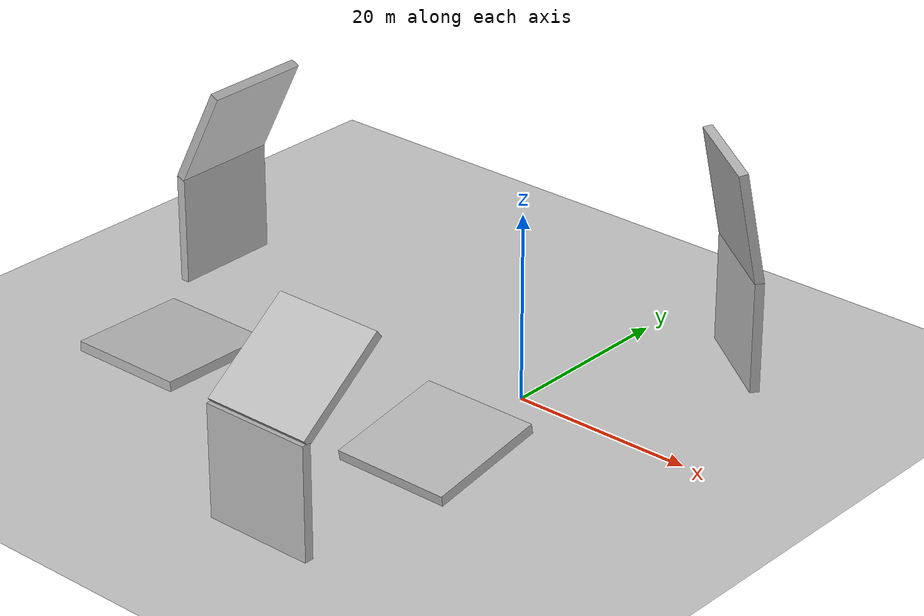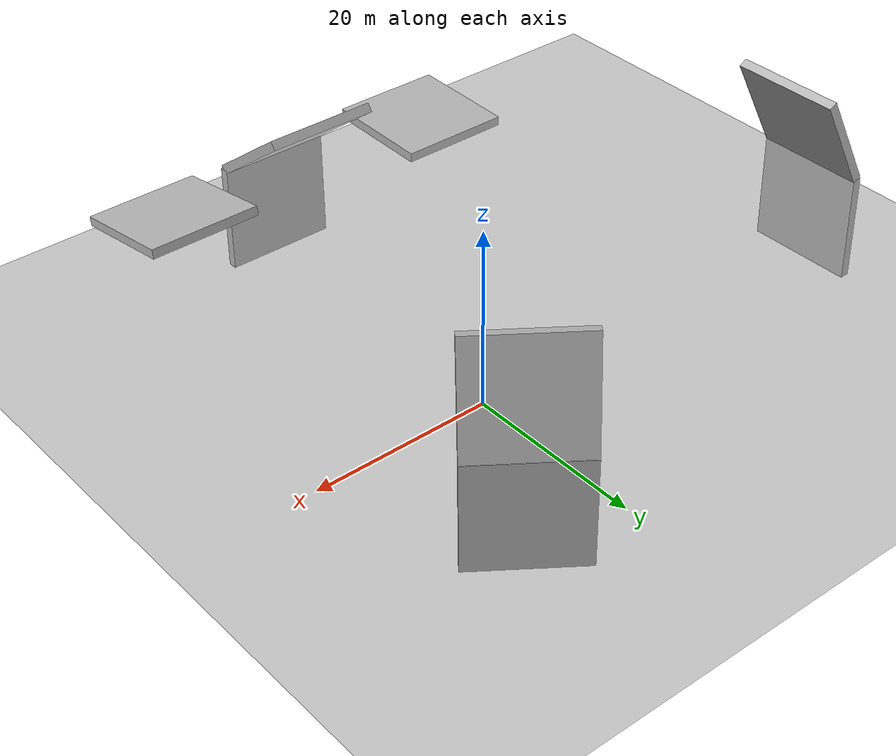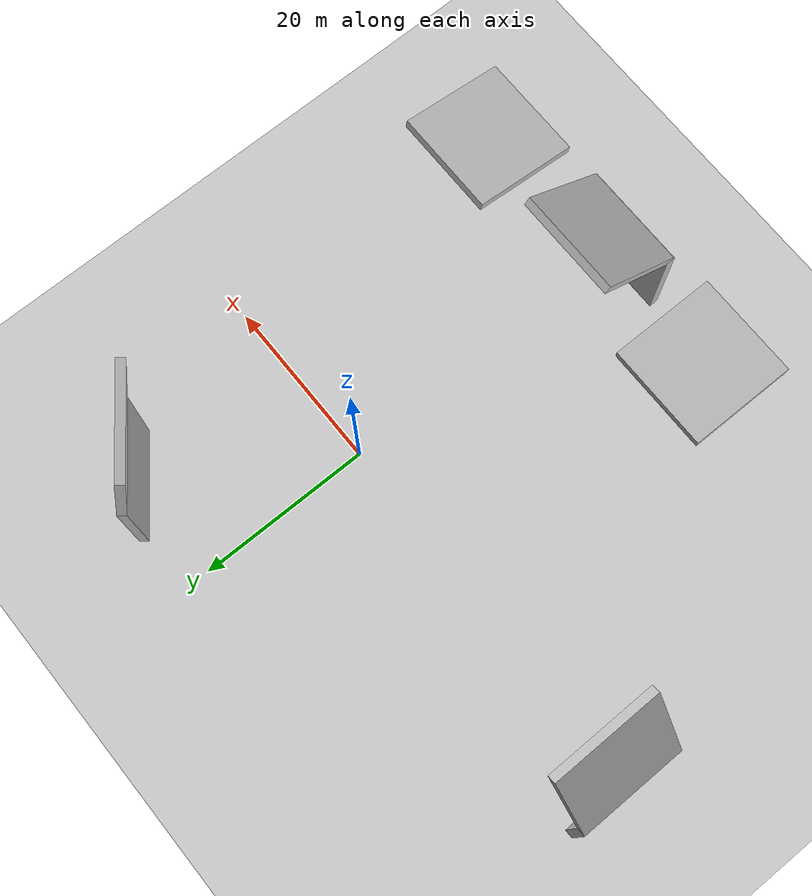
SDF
<?xml version="1.0" ?>
<sdf version='1.7'>
  <world name='default'>
    <light name='sun' type='directional'>
      <cast_shadows>1</cast_shadows>
      <pose>0 0 10 0 -0 0</pose>
      <diffuse>0.8 0.8 0.8 1</diffuse>
      <specular>0.2 0.2 0.2 1</specular>
      <attenuation>
        <range>1000</range>
        <constant>0.9</constant>
        <linear>0.01</linear>
        <quadratic>0.001</quadratic>
      </attenuation>
      <direction>-0.5 0.1 -0.9</direction>
      <spot>
        <inner_angle>0</inner_angle>
        <outer_angle>0</outer_angle>
        <falloff>0</falloff>
      </spot>
    </light>
    <model name='ground_plane'>
      <static>1</static>
      <link name='link'>
        <collision name='collision'>
          <geometry>
            <plane>
              <normal>0 0 1</normal>
              <size>100 100</size>
            </plane>
          </geometry>
          <surface>
            <contact>
              <collide_bitmask>65535</collide_bitmask>
              <ode/>
            </contact>
            <friction>
              <ode>
                <mu>100</mu>
                <mu2>50</mu2>
              </ode>
              <torsional>
                <ode/>
              </torsional>
            </friction>
            <bounce/>
          </surface>
          <max_contacts>10</max_contacts>
        </collision>
        <visual name='visual'>
          <cast_shadows>0</cast_shadows>
          <geometry>
            <plane>
              <normal>0 0 1</normal>
              <size>100 100</size>
            </plane>
          </geometry>
          <material>
            <script>
              <uri>file://media/materials/scripts/gazebo.material</uri>
              <name>Gazebo/Grey</name>
            </script>
          </material>
        </visual>
        <self_collide>0</self_collide>
        <enable_wind>0</enable_wind>
        <kinematic>0</kinematic>
      </link>
    </model>
    <gravity>0 0 -9.8</gravity>
    <magnetic_field>6e-06 2.3e-05 -4.2e-05</magnetic_field>
    <atmosphere type='adiabatic'/>
    <physics type='ode'>
      <max_step_size>0.001</max_step_size>
      <real_time_factor>1</real_time_factor>
      <real_time_update_rate>1000</real_time_update_rate>
    </physics>
    <scene>
      <ambient>0.4 0.4 0.4 1</ambient>
      <background>0.7 0.7 0.7 1</background>
      <shadows>0</shadows>
    </scene>
    <wind/>
    <spherical_coordinates>
      <surface_model>EARTH_WGS84</surface_model>
      <latitude_deg>0</latitude_deg>
      <longitude_deg>0</longitude_deg>
      <elevation>0</elevation>
      <heading_deg>0</heading_deg>
    </spherical_coordinates>
    <include>
      <name>wall 1</name>
      <uri>model://interaction_wall</uri>
      <pose>-0.813837 -35.4933 0 0 -0 0</pose>
    </include>

    <include>
      <name>wall 2</name>
      <uri>model://interaction_wall</uri>
      <pose>-43.4185 2.0949 -0 0 -0 1.58298</pose>
    </include>

    <include>
      <name>wall 3</name>
      <uri>model://interaction_wall</uri>
      <pose>-43.4185 2.0949 11.9408 0.471063 -0 1.58298</pose>
    </include>

    <include>
      <name>wall 4</name>
      <uri>model://interaction_wall</uri>
      <pose>11.6372 19.6954 0 0 -0 2.51001</pose>
    </include>

    <include>
      <name>wall 5</name>
      <uri>model://interaction_wall</uri>
      <pose>11.6372 19.6954 11.984 -0.180502 -0 2.51001</pose>
    </include>

    <include>
      <name>wall 6</name>
      <uri>model://interaction_wall</uri>
      <pose>-0.813837 -35.4933 12.0152 -0.927793 0 0</pose>
    </include>

    <include>
      <name>wall 7</name>
      <uri>model://interaction_wall</uri>
      <pose>-16.8969 -36.5274 12.3819 -1.5817 0 0</pose>
    </include>

    <include>
      <name>wall 8</name>
      <uri>model://interaction_wall</uri>
      <pose>15.0094 -35.3549 12.3848 -1.39584 0 0</pose>
    </include>

    <gui>
      <camera name="user_camera">
        <track_visual>
          <static>true</static>
          <use_model_frame>true</use_model_frame>
          <xyz>-3.5 -2 3</xyz>
          <inherit_yaw>true</inherit_yaw>
        </track_visual>
    </camera>
    </gui>
  </world>
</sdf>

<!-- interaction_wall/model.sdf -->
<sdf version="1.5">
<model name='mywall'>
      <static>1</static>
      <link name='link'>
        <inertial>
          <mass>10000</mass>
          <inertia>
            <ixx>583.556</ixx>
            <ixy>0</ixy>
            <ixz>0</ixz>
            <iyy>1678.8</iyy>
            <iyz>0</iyz>
            <izz>1111.54</izz>
          </inertia>
          <pose>0 0 0 0 -0 0</pose>
        </inertial>
        <self_collide>0</self_collide>
        <enable_wind>0</enable_wind>
        <pose>0 0 6 -0 -0 -0</pose>
        <visual name='visual'>
          <geometry>
            <box>
              <size>12 1 12</size>
            </box>
          </geometry>
          <material>
            <script>
              <name>Concrete/Diffuse</name>
              <uri>model://interaction_wall/materials/concretewall.material</uri>
            </script>
          </material>
          <pose>0 0 0 0 -0 0</pose>
          <transparency>0</transparency>
          <cast_shadows>1</cast_shadows>
        </visual>
        <collision name='collision'>
          <laser_retro>0</laser_retro>
          <max_contacts>10</max_contacts>
          <pose>0 0 0 0 -0 0</pose>
          <geometry>
            <box>
              <size>12 1 12</size>
            </box>
          </geometry>
          <surface>
            <friction>
              <ode/>
              <torsional>
                <ode/>
              </torsional>
            </friction>
            <contact>
              <ode/>
            </contact>
            <bounce/>
          </surface>
          <mu1>1</mu1>
          <mu2>1</mu2>
        </collision>
        <kinematic>0</kinematic>
      </link>
      <allow_auto_disable>1</allow_auto_disable>
    </model>
</sdf>
